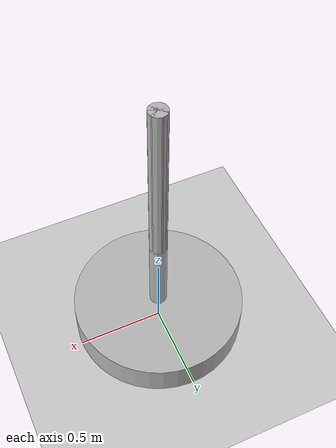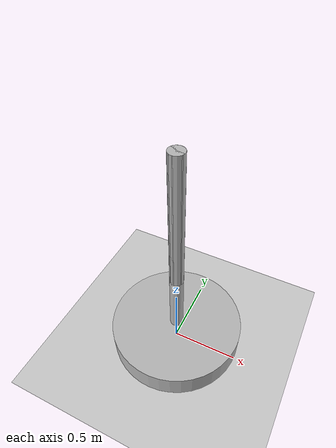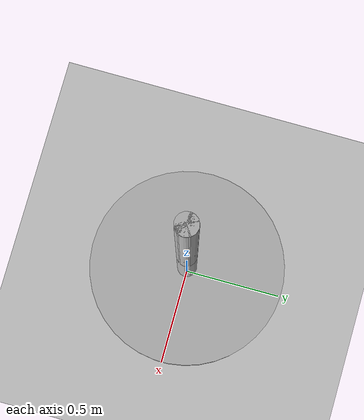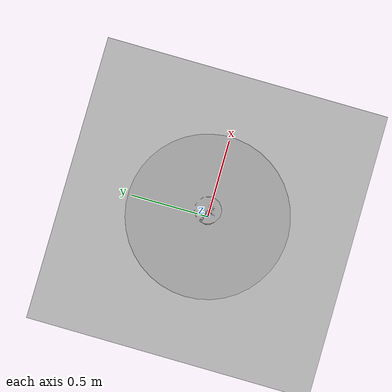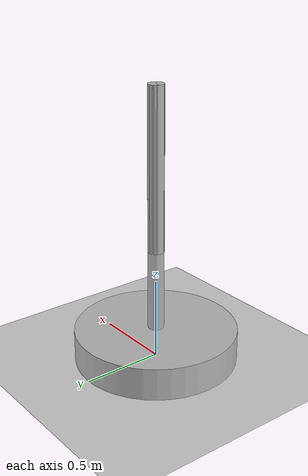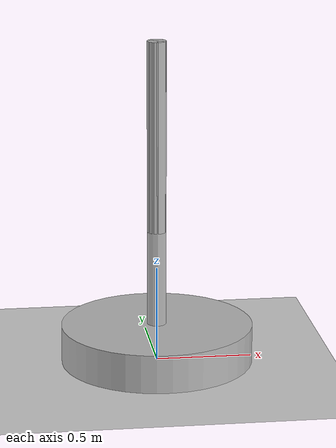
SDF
<sdf version="1.7">
 <world name="world1">
  <light name="sun" type="directional">
   <pose>0 0 10 0 -0 0</pose>
   <diffuse>0.8 0.8 0.8 1</diffuse>
   <specular>0.2 0.2 0.2 1</specular>
   <attenuation>
    <range>1000</range>
    <constant>0.9</constant>
    <linear>0.01</linear>
    <quadratic>0.001</quadratic>
   </attenuation>
   <direction>-0.5 0.1 -0.9</direction>
   <spot><inner_angle>0</inner_angle><outer_angle>0</outer_angle><falloff>0</falloff></spot>
  </light>
  <model name="ground_plane">
   <static>1</static>
   <link name="link">
    <collision name="collision">
     <geometry><plane><normal>0 0 1</normal><size>100 100</size></plane></geometry>
     <surface>
      <contact><collide_bitmask>65535</collide_bitmask></contact>
      <friction><ode><mu>100</mu><mu2>50</mu2></ode></friction>
     </surface>
    </collision>
    <visual name="visual">
     <cast_shadows>0</cast_shadows>
     <geometry><plane><normal>0 0 1</normal><size>100 100</size></plane></geometry>
     <material>
      <script><uri>file://media/materials/scripts/gazebo.material</uri><name>Gazebo/Grey</name></script>
     </material>
    </visual>
   </link>
  </model>
  <gravity>0 0 -9.8</gravity>
  <magnetic_field>6e-06 2.3e-05 -4.2e-05</magnetic_field>
  <atmosphere type="adiabatic"/>
  <physics type="ode">
   <max_step_size>0.001</max_step_size>
   <real_time_factor>1</real_time_factor>
   <real_time_update_rate>1000</real_time_update_rate>
  </physics>
  <scene><ambient>0.4 0.4 0.4 1</ambient><background>0.7 0.7 0.7 1</background><shadows>1</shadows></scene>
  <spherical_coordinates>
   <surface_model>EARTH_WGS84</surface_model>
   <latitude_deg>0</latitude_deg>
   <longitude_deg>0</longitude_deg>
   <elevation>0</elevation>
   <heading_deg>0</heading_deg>
  </spherical_coordinates>
  <model name="model1">
   <pose>0 0 0 -1.57 0 0</pose>
   <link name="base_link">
    <inertial>
     <pose>0 -0.1593 0 0 -0 0</pose>
     <mass>455.92</mass>
     <inertia>
      <ixx>33.905</ixx>
      <ixy>3.8115e-33</ixy>
      <ixz>-2.5391e-34</ixz>
      <iyy>53.054</iyy>
      <iyz>-1.1725e-15</iyz>
      <izz>33.905</izz>
     </inertia>
    </inertial>
    <collision name="base_link_collision">
     <geometry>
      <mesh>
       <scale>1 1 1</scale>
       <uri>/home/delta/ieee_ws/src/applyTorque/models/model1/meshes/base_link.STL</uri>
      </mesh>
     </geometry>
    </collision>
    <visual name="base_link_visual">
     <geometry>
      <mesh>
       <scale>1 1 1</scale>
       <uri>/home/delta/ieee_ws/src/applyTorque/models/model1/meshes/base_link.STL</uri>
      </mesh>
     </geometry>
    </visual>
   </link>
   <joint name="R1" type="revolute">
    <pose relative_to="base_link">0 -1.7 0 1.5708 -0 -3.14159</pose>
    <parent>base_link</parent>
    <child>link</child>
    <axis>
     <xyz>1 0 0</xyz>
     <limit><lower>-1e+16</lower><upper>1e+16</upper></limit>
     <dynamics><spring_reference>0</spring_reference><spring_stiffness>0</spring_stiffness></dynamics>
    </axis>
   </joint>
   <link name="link">
    <pose relative_to="R1">0 0 0 0 -0 0</pose>
    <inertial>
     <pose>-0 0 0.5 0 -0 0</pose>
     <mass>21.206</mass>
     <inertia>
      <ixx>1.7804</ixx>
      <ixy>-3.6279e-33</ixy>
      <ixz>-1.0255e-17</ixz>
      <iyy>1.7804</iyy>
      <iyz>1.223e-32</iyz>
      <izz>0.026507</izz>
     </inertia>
    </inertial>
    <collision name="link_collision">
     <geometry>
      <mesh><scale>1 1 1</scale><uri>/home/delta/ieee_ws/src/applyTorque/models/model1/meshes/link.STL</uri></mesh>
     </geometry>
    </collision>
    <visual name="link_visual">
     <geometry>
      <mesh><scale>1 1 1</scale><uri>/home/delta/ieee_ws/src/applyTorque/models/model1/meshes/link.STL</uri></mesh>
     </geometry>
    </visual>
   </link>
   <link name="world_fix"/>
   <joint name="weld" type="fixed"><parent>world</parent><child>base_link</child></joint>
   <plugin name="gazebo_ros_force" filename="libgazebo_ros_force.so">
    <ros><namespace>/demo/link</namespace><remapping>gazebo_ros_force:=force_demo</remapping></ros>
    <link_name>link</link_name>
    <force_frame>link</force_frame>
   </plugin>
   <plugin name="joint_publisher" filename="libgazebo_ros_joint_state_publisher.so">
    <ros><namespace>/myrobot</namespace></ros>
    <update_rate>1000.0</update_rate>
    <joint_name>R1</joint_name>
   </plugin>
  </model>
 </world>
</sdf>
